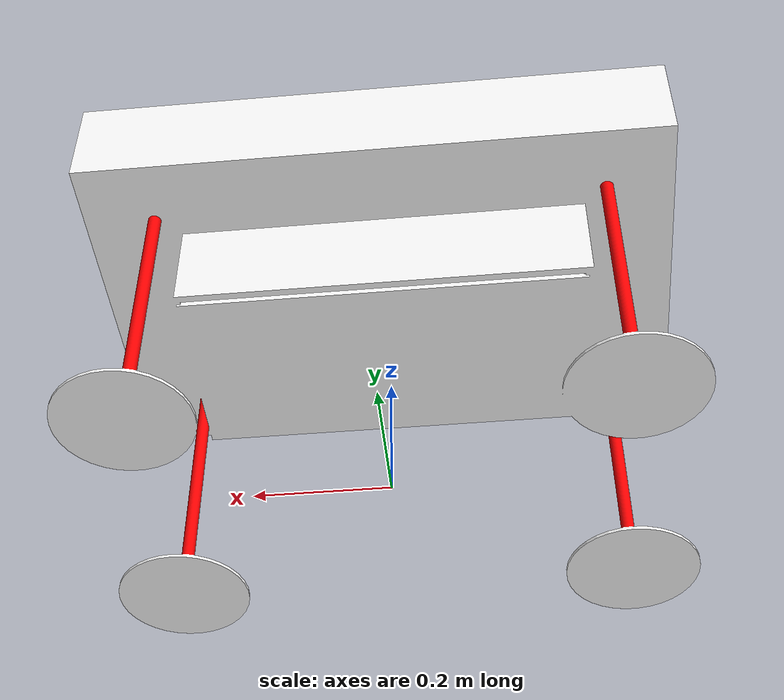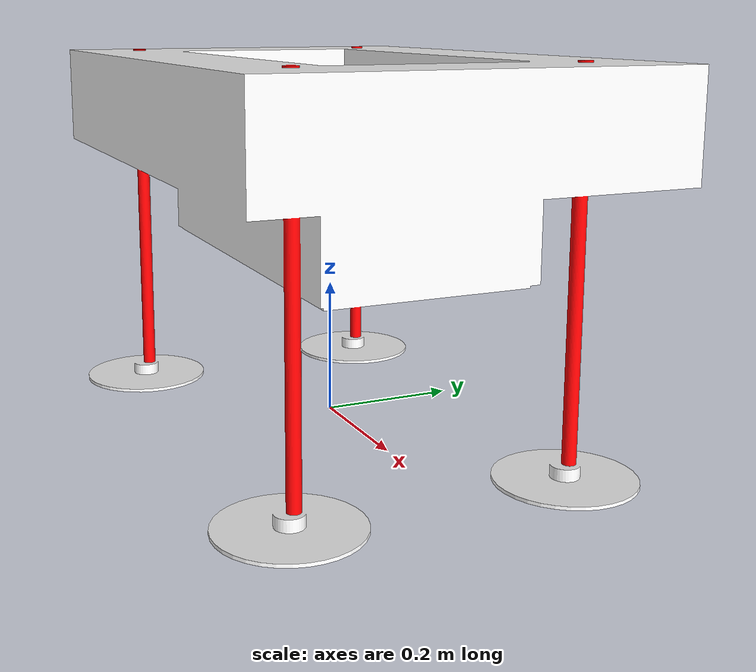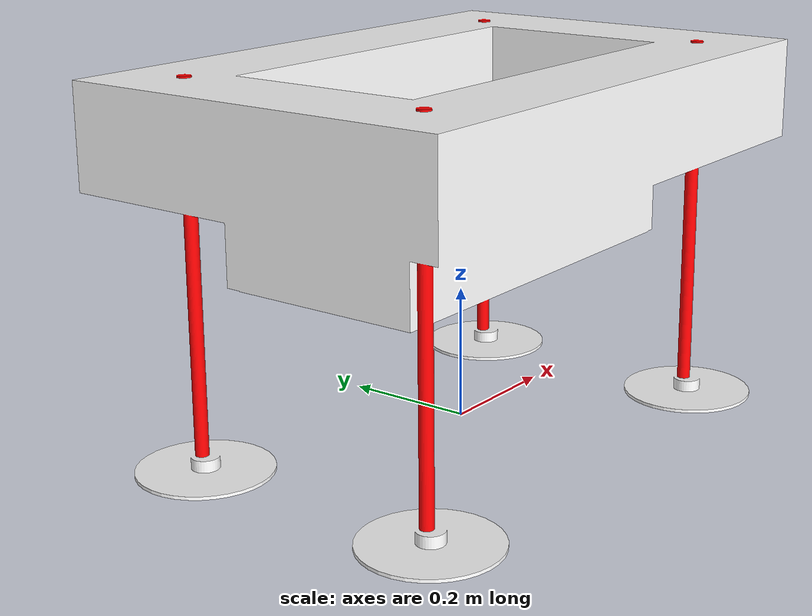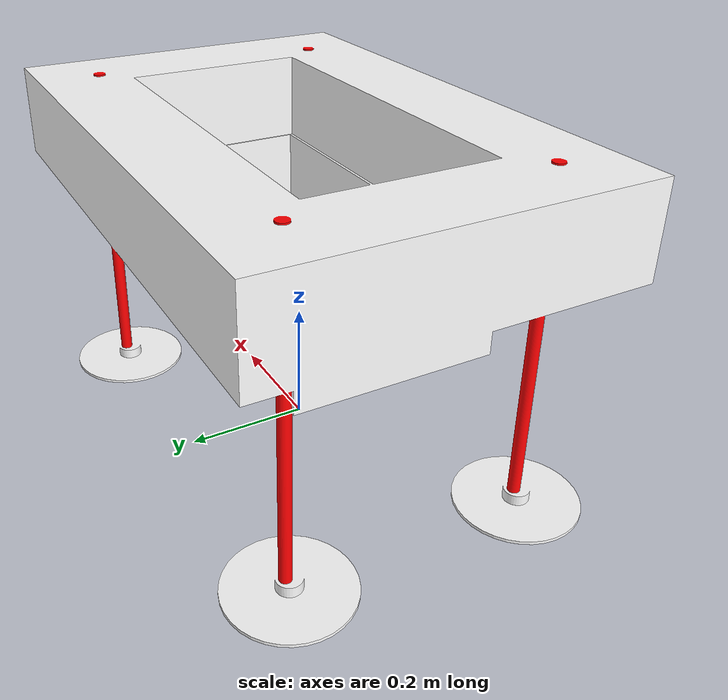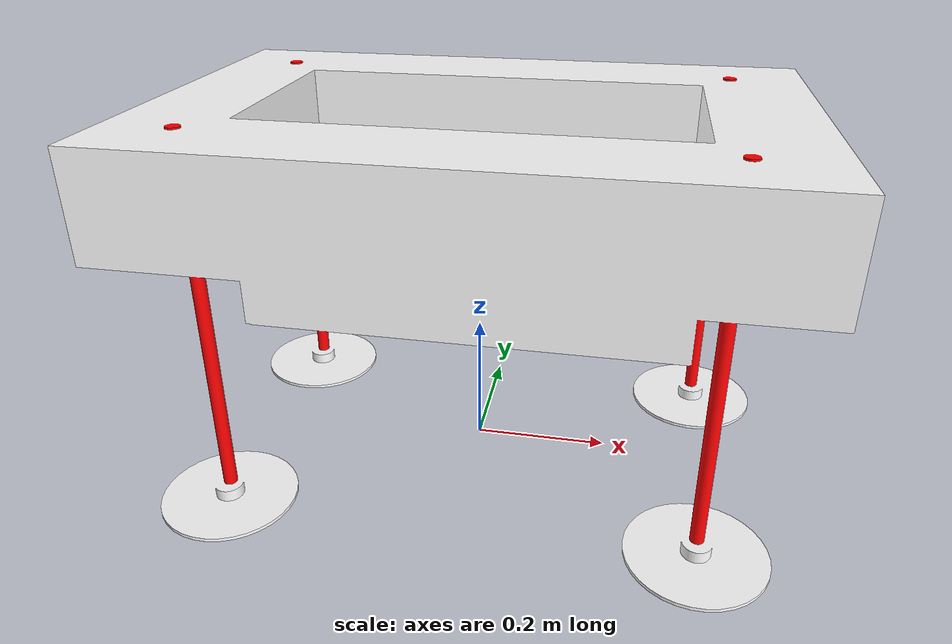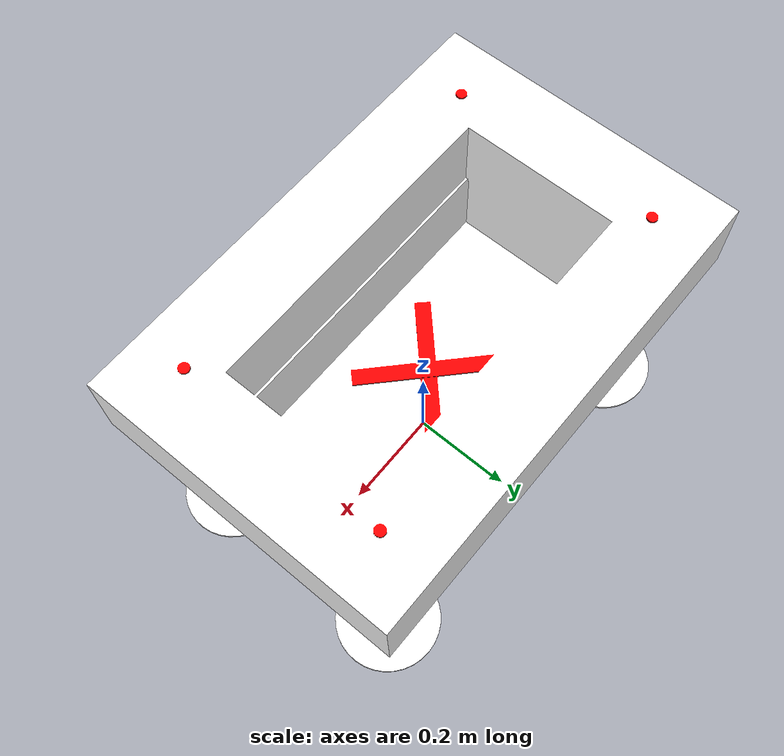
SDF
<?xml version='1.0'?>
<sdf version='1.6'>
  <model name='bin_4_dropping_task'>
    <link name='bin'>
      <pose>0 0 0.1 0 0 0</pose>
      <collision name ='bin_collision'>
        <geometry>
          <mesh>
            <uri>model://bin_4_dropping_task/meshes/bin_4_dropping_task.dae</uri>
          </mesh>
        </geometry>
      </collision>
      <visual name='bin_visual'>
        <geometry>
          <mesh>
            <uri>model://bin_4_dropping_task/meshes/bin_4_dropping_task.dae</uri>
          </mesh>
        </geometry>
      </visual>
    </link>
    <static>true</static>
  </model>
</sdf>
